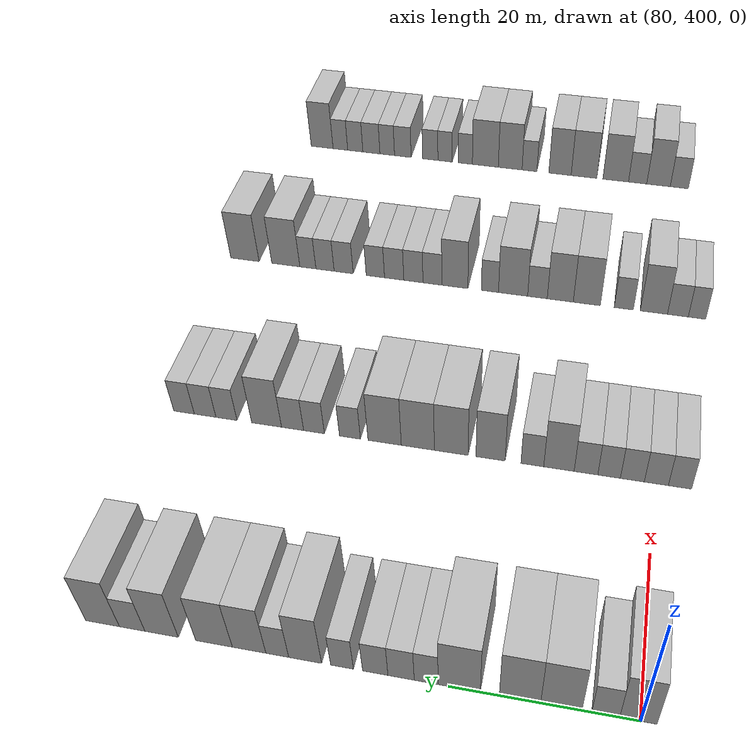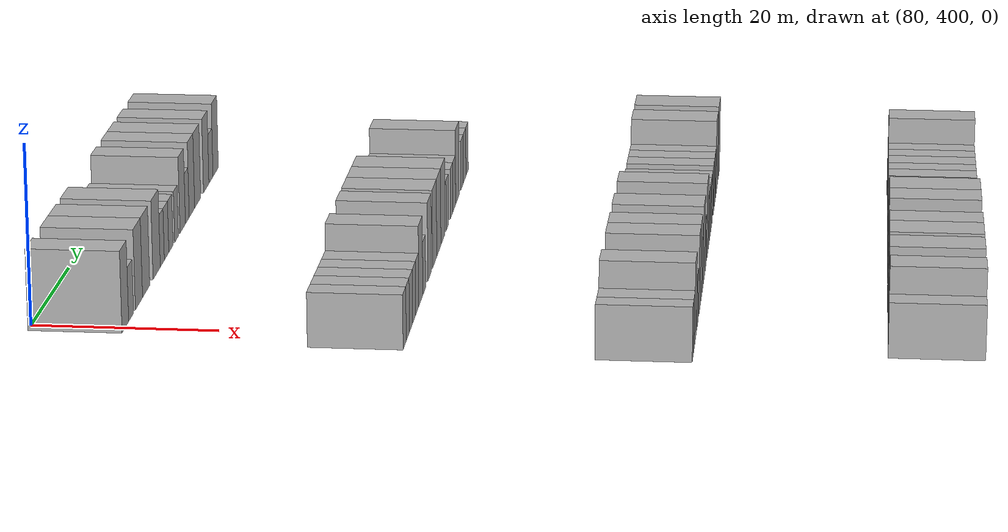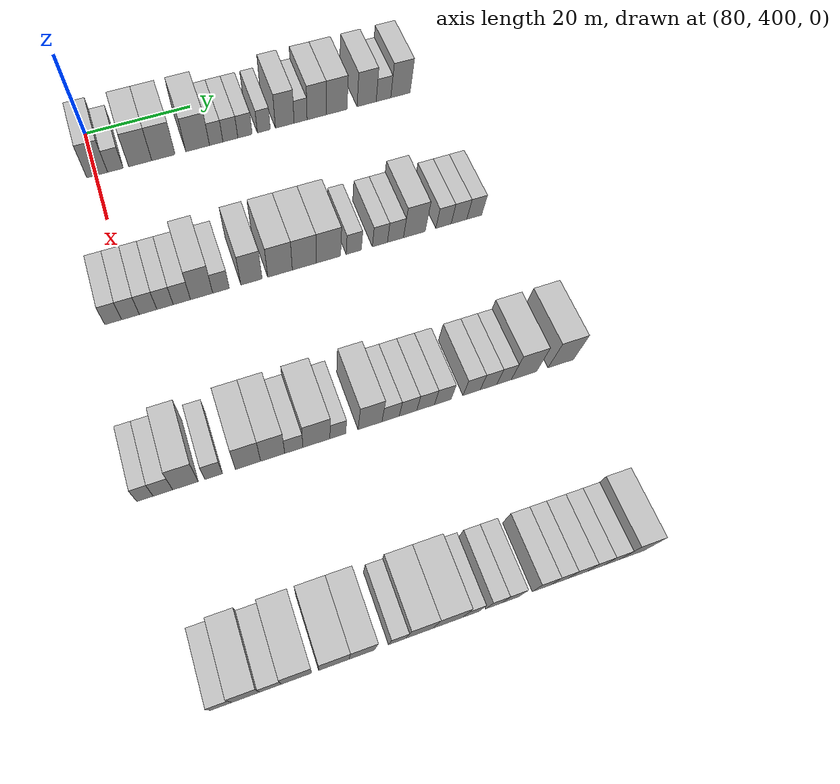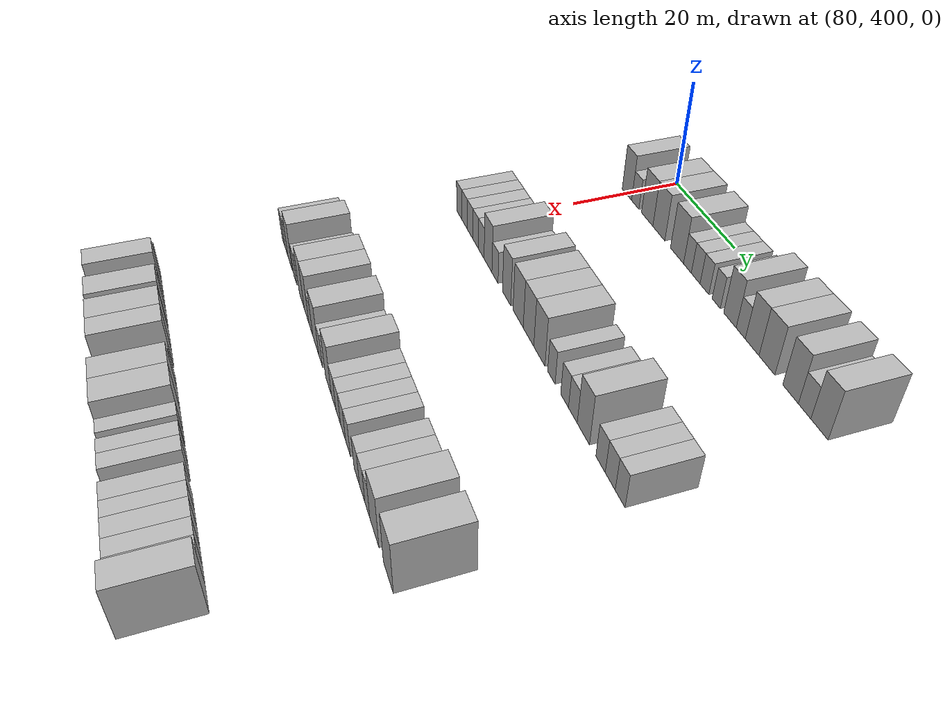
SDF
<sdf version="1.6">
 <world name="default">
  <model name="building_671">
   <static>1</static>
   <pose>85.0000 400.2577 0 0.000000 0.000000 0.000000</pose>
   <link name="link">
    <pose>0 0 4.50 0 0 0</pose>
    <collision name="collision"><geometry><box><size>10.0000 3.7973 9.0000</size></box></geometry></collision>
    <visual name="visual">
     <cast_shadows>0</cast_shadows>
     <geometry><box><size>10.0000 3.7973 9.0000</size></box></geometry>
     <material>
      <script>
       <uri>model://HANNAS_wall/materials/scripts</uri>
       <uri>model://HANNAS_wall/materials/textures</uri>
       <name>vrc/HANNAS_wall</name>
      </script>
     </material>
    </visual>
   </link>
  </model>
  <model name="building_672">
   <static>1</static>
   <pose>85.0000 403.5877 0 0.000000 0.000000 0.000000</pose>
   <link name="link">
    <pose>0 0 3.00 0 0 0</pose>
    <collision name="collision"><geometry><box><size>10.0000 2.8627 6.0000</size></box></geometry></collision>
    <visual name="visual">
     <cast_shadows>0</cast_shadows>
     <geometry><box><size>10.0000 2.8627 6.0000</size></box></geometry>
     <material>
      <script>
       <uri>model://HANNAS_wall/materials/scripts</uri>
       <uri>model://HANNAS_wall/materials/textures</uri>
       <name>vrc/HANNAS_wall</name>
      </script>
     </material>
    </visual>
   </link>
  </model>
  <model name="building_673">
   <static>1</static>
   <pose>85.0000 408.1589 0 0.000000 0.000000 0.000000</pose>
   <link name="link">
    <pose>0 0 4.50 0 0 0</pose>
    <collision name="collision"><geometry><box><size>10.0000 4.2796 9.0000</size></box></geometry></collision>
    <visual name="visual">
     <cast_shadows>0</cast_shadows>
     <geometry><box><size>10.0000 4.2796 9.0000</size></box></geometry>
     <material>
      <script>
       <uri>model://HANNAS_wall/materials/scripts</uri>
       <uri>model://HANNAS_wall/materials/textures</uri>
       <name>vrc/HANNAS_wall</name>
      </script>
     </material>
    </visual>
   </link>
  </model>
  <model name="building_674">
   <static>1</static>
   <pose>85.0000 412.4686 0 0.000000 0.000000 0.000000</pose>
   <link name="link">
    <pose>0 0 4.50 0 0 0</pose>
    <collision name="collision"><geometry><box><size>10.0000 4.3399 9.0000</size></box></geometry></collision>
    <visual name="visual">
     <cast_shadows>0</cast_shadows>
     <geometry><box><size>10.0000 4.3399 9.0000</size></box></geometry>
     <material>
      <script>
       <uri>model://HANNAS_wall/materials/scripts</uri>
       <uri>model://HANNAS_wall/materials/textures</uri>
       <name>vrc/HANNAS_wall</name>
      </script>
     </material>
    </visual>
   </link>
  </model>
  <model name="building_675">
   <static>1</static>
   <pose>85.0000 418.8766 0 0.000000 0.000000 0.000000</pose>
   <link name="link">
    <pose>0 0 4.50 0 0 0</pose>
    <collision name="collision"><geometry><box><size>10.0000 4.4762 9.0000</size></box></geometry></collision>
    <visual name="visual">
     <cast_shadows>0</cast_shadows>
     <geometry><box><size>10.0000 4.4762 9.0000</size></box></geometry>
     <material>
      <script>
       <uri>model://HANNAS_wall/materials/scripts</uri>
       <uri>model://HANNAS_wall/materials/textures</uri>
       <name>vrc/HANNAS_wall</name>
      </script>
     </material>
    </visual>
   </link>
  </model>
  <model name="building_676">
   <static>1</static>
   <pose>85.0000 422.4019 0 0.000000 0.000000 0.000000</pose>
   <link name="link">
    <pose>0 0 3.00 0 0 0</pose>
    <collision name="collision"><geometry><box><size>10.0000 2.5745 6.0000</size></box></geometry></collision>
    <visual name="visual">
     <cast_shadows>0</cast_shadows>
     <geometry><box><size>10.0000 2.5745 6.0000</size></box></geometry>
     <material>
      <script>
       <uri>model://HANNAS_wall/materials/scripts</uri>
       <uri>model://HANNAS_wall/materials/textures</uri>
       <name>vrc/HANNAS_wall</name>
      </script>
     </material>
    </visual>
   </link>
  </model>
  <model name="building_677">
   <static>1</static>
   <pose>85.0000 425.1099 0 0.000000 0.000000 0.000000</pose>
   <link name="link">
    <pose>0 0 3.00 0 0 0</pose>
    <collision name="collision"><geometry><box><size>10.0000 2.8415 6.0000</size></box></geometry></collision>
    <visual name="visual">
     <cast_shadows>0</cast_shadows>
     <geometry><box><size>10.0000 2.8415 6.0000</size></box></geometry>
     <material>
      <script>
       <uri>model://HANNAS_wall/materials/scripts</uri>
       <uri>model://HANNAS_wall/materials/textures</uri>
       <name>vrc/HANNAS_wall</name>
      </script>
     </material>
    </visual>
   </link>
  </model>
  <model name="building_678">
   <static>1</static>
   <pose>85.0000 427.9083 0 0.000000 0.000000 0.000000</pose>
   <link name="link">
    <pose>0 0 3.00 0 0 0</pose>
    <collision name="collision"><geometry><box><size>10.0000 2.7551 6.0000</size></box></geometry></collision>
    <visual name="visual">
     <cast_shadows>0</cast_shadows>
     <geometry><box><size>10.0000 2.7551 6.0000</size></box></geometry>
     <material>
      <script>
       <uri>model://HANNAS_wall/materials/scripts</uri>
       <uri>model://HANNAS_wall/materials/textures</uri>
       <name>vrc/HANNAS_wall</name>
      </script>
     </material>
    </visual>
   </link>
  </model>
  <model name="building_679">
   <static>1</static>
   <pose>85.0000 431.5337 0 0.000000 0.000000 0.000000</pose>
   <link name="link">
    <pose>0 0 3.00 0 0 0</pose>
    <collision name="collision"><geometry><box><size>10.0000 2.4958 6.0000</size></box></geometry></collision>
    <visual name="visual">
     <cast_shadows>0</cast_shadows>
     <geometry><box><size>10.0000 2.4958 6.0000</size></box></geometry>
     <material>
      <script>
       <uri>model://HANNAS_wall/materials/scripts</uri>
       <uri>model://HANNAS_wall/materials/textures</uri>
       <name>vrc/HANNAS_wall</name>
      </script>
     </material>
    </visual>
   </link>
  </model>
  <model name="building_680">
   <static>1</static>
   <pose>85.0000 435.6031 0 0.000000 0.000000 0.000000</pose>
   <link name="link">
    <pose>0 0 4.50 0 0 0</pose>
    <collision name="collision"><geometry><box><size>10.0000 3.6430 9.0000</size></box></geometry></collision>
    <visual name="visual">
     <cast_shadows>0</cast_shadows>
     <geometry><box><size>10.0000 3.6430 9.0000</size></box></geometry>
     <material>
      <script>
       <uri>model://HANNAS_wall/materials/scripts</uri>
       <uri>model://HANNAS_wall/materials/textures</uri>
       <name>vrc/HANNAS_wall</name>
      </script>
     </material>
    </visual>
   </link>
  </model>
  <model name="building_681">
   <static>1</static>
   <pose>85.0000 438.7001 0 0.000000 0.000000 0.000000</pose>
   <link name="link">
    <pose>0 0 3.00 0 0 0</pose>
    <collision name="collision"><geometry><box><size>10.0000 2.5510 6.0000</size></box></geometry></collision>
    <visual name="visual">
     <cast_shadows>0</cast_shadows>
     <geometry><box><size>10.0000 2.5510 6.0000</size></box></geometry>
     <material>
      <script>
       <uri>model://HANNAS_wall/materials/scripts</uri>
       <uri>model://HANNAS_wall/materials/textures</uri>
       <name>vrc/HANNAS_wall</name>
      </script>
     </material>
    </visual>
   </link>
  </model>
  <model name="building_682">
   <static>1</static>
   <pose>85.0000 441.8605 0 0.000000 0.000000 0.000000</pose>
   <link name="link">
    <pose>0 0 4.50 0 0 0</pose>
    <collision name="collision"><geometry><box><size>10.0000 3.7698 9.0000</size></box></geometry></collision>
    <visual name="visual">
     <cast_shadows>0</cast_shadows>
     <geometry><box><size>10.0000 3.7698 9.0000</size></box></geometry>
     <material>
      <script>
       <uri>model://HANNAS_wall/materials/scripts</uri>
       <uri>model://HANNAS_wall/materials/textures</uri>
       <name>vrc/HANNAS_wall</name>
      </script>
     </material>
    </visual>
   </link>
  </model>
  <model name="building_683">
   <static>1</static>
   <pose>85.0000 445.8245 0 0.000000 0.000000 0.000000</pose>
   <link name="link">
    <pose>0 0 4.50 0 0 0</pose>
    <collision name="collision"><geometry><box><size>10.0000 4.1581 9.0000</size></box></geometry></collision>
    <visual name="visual">
     <cast_shadows>0</cast_shadows>
     <geometry><box><size>10.0000 4.1581 9.0000</size></box></geometry>
     <material>
      <script>
       <uri>model://HANNAS_wall/materials/scripts</uri>
       <uri>model://HANNAS_wall/materials/textures</uri>
       <name>vrc/HANNAS_wall</name>
      </script>
     </material>
    </visual>
   </link>
  </model>
  <model name="building_684">
   <static>1</static>
   <pose>85.0000 451.8263 0 0.000000 0.000000 0.000000</pose>
   <link name="link">
    <pose>0 0 4.50 0 0 0</pose>
    <collision name="collision"><geometry><box><size>10.0000 3.8455 9.0000</size></box></geometry></collision>
    <visual name="visual">
     <cast_shadows>0</cast_shadows>
     <geometry><box><size>10.0000 3.8455 9.0000</size></box></geometry>
     <material>
      <script>
       <uri>model://HANNAS_wall/materials/scripts</uri>
       <uri>model://HANNAS_wall/materials/textures</uri>
       <name>vrc/HANNAS_wall</name>
      </script>
     </material>
    </visual>
   </link>
  </model>
  <model name="building_685">
   <static>1</static>
   <pose>85.0000 455.2310 0 0.000000 0.000000 0.000000</pose>
   <link name="link">
    <pose>0 0 3.00 0 0 0</pose>
    <collision name="collision"><geometry><box><size>10.0000 2.9639 6.0000</size></box></geometry></collision>
    <visual name="visual">
     <cast_shadows>0</cast_shadows>
     <geometry><box><size>10.0000 2.9639 6.0000</size></box></geometry>
     <material>
      <script>
       <uri>model://HANNAS_wall/materials/scripts</uri>
       <uri>model://HANNAS_wall/materials/textures</uri>
       <name>vrc/HANNAS_wall</name>
      </script>
     </material>
    </visual>
   </link>
  </model>
  <model name="building_686">
   <static>1</static>
   <pose>85.0000 458.6773 0 0.000000 0.000000 0.000000</pose>
   <link name="link">
    <pose>0 0 4.50 0 0 0</pose>
    <collision name="collision"><geometry><box><size>10.0000 3.9289 9.0000</size></box></geometry></collision>
    <visual name="visual">
     <cast_shadows>0</cast_shadows>
     <geometry><box><size>10.0000 3.9289 9.0000</size></box></geometry>
     <material>
      <script>
       <uri>model://HANNAS_wall/materials/scripts</uri>
       <uri>model://HANNAS_wall/materials/textures</uri>
       <name>vrc/HANNAS_wall</name>
      </script>
     </material>
    </visual>
   </link>
  </model>
  <model name="building_898">
   <static>1</static>
   <pose>115.0000 396.9052 0 0.000000 0.000000 0.000000</pose>
   <link name="link">
    <pose>0 0 3.00 0 0 0</pose>
    <collision name="collision"><geometry><box><size>10.0000 2.8118 6.0000</size></box></geometry></collision>
    <visual name="visual">
     <cast_shadows>0</cast_shadows>
     <geometry><box><size>10.0000 2.8118 6.0000</size></box></geometry>
     <material>
      <script>
       <uri>model://HANNAS_wall/materials/scripts</uri>
       <uri>model://HANNAS_wall/materials/textures</uri>
       <name>vrc/HANNAS_wall</name>
      </script>
     </material>
    </visual>
   </link>
  </model>
  <model name="building_899">
   <static>1</static>
   <pose>115.0000 399.7756 0 0.000000 0.000000 0.000000</pose>
   <link name="link">
    <pose>0 0 3.00 0 0 0</pose>
    <collision name="collision"><geometry><box><size>10.0000 2.9290 6.0000</size></box></geometry></collision>
    <visual name="visual">
     <cast_shadows>0</cast_shadows>
     <geometry><box><size>10.0000 2.9290 6.0000</size></box></geometry>
     <material>
      <script>
       <uri>model://HANNAS_wall/materials/scripts</uri>
       <uri>model://HANNAS_wall/materials/textures</uri>
       <name>vrc/HANNAS_wall</name>
      </script>
     </material>
    </visual>
   </link>
  </model>
  <model name="building_900">
   <static>1</static>
   <pose>115.0000 402.7057 0 0.000000 0.000000 0.000000</pose>
   <link name="link">
    <pose>0 0 3.00 0 0 0</pose>
    <collision name="collision"><geometry><box><size>10.0000 2.9313 6.0000</size></box></geometry></collision>
    <visual name="visual">
     <cast_shadows>0</cast_shadows>
     <geometry><box><size>10.0000 2.9313 6.0000</size></box></geometry>
     <material>
      <script>
       <uri>model://HANNAS_wall/materials/scripts</uri>
       <uri>model://HANNAS_wall/materials/textures</uri>
       <name>vrc/HANNAS_wall</name>
      </script>
     </material>
    </visual>
   </link>
  </model>
  <model name="building_901">
   <static>1</static>
   <pose>115.0000 405.5606 0 0.000000 0.000000 0.000000</pose>
   <link name="link">
    <pose>0 0 3.00 0 0 0</pose>
    <collision name="collision"><geometry><box><size>10.0000 2.7785 6.0000</size></box></geometry></collision>
    <visual name="visual">
     <cast_shadows>0</cast_shadows>
     <geometry><box><size>10.0000 2.7785 6.0000</size></box></geometry>
     <material>
      <script>
       <uri>model://HANNAS_wall/materials/scripts</uri>
       <uri>model://HANNAS_wall/materials/textures</uri>
       <name>vrc/HANNAS_wall</name>
      </script>
     </material>
    </visual>
   </link>
  </model>
  <model name="building_902">
   <static>1</static>
   <pose>115.0000 408.4156 0 0.000000 0.000000 0.000000</pose>
   <link name="link">
    <pose>0 0 3.00 0 0 0</pose>
    <collision name="collision"><geometry><box><size>10.0000 2.9315 6.0000</size></box></geometry></collision>
    <visual name="visual">
     <cast_shadows>0</cast_shadows>
     <geometry><box><size>10.0000 2.9315 6.0000</size></box></geometry>
     <material>
      <script>
       <uri>model://HANNAS_wall/materials/scripts</uri>
       <uri>model://HANNAS_wall/materials/textures</uri>
       <name>vrc/HANNAS_wall</name>
      </script>
     </material>
    </visual>
   </link>
  </model>
  <model name="building_903">
   <static>1</static>
   <pose>115.0000 411.7792 0 0.000000 0.000000 0.000000</pose>
   <link name="link">
    <pose>0 0 4.50 0 0 0</pose>
    <collision name="collision"><geometry><box><size>10.0000 3.7956 9.0000</size></box></geometry></collision>
    <visual name="visual">
     <cast_shadows>0</cast_shadows>
     <geometry><box><size>10.0000 3.7956 9.0000</size></box></geometry>
     <material>
      <script>
       <uri>model://HANNAS_wall/materials/scripts</uri>
       <uri>model://HANNAS_wall/materials/textures</uri>
       <name>vrc/HANNAS_wall</name>
      </script>
     </material>
    </visual>
   </link>
  </model>
  <model name="building_904">
   <static>1</static>
   <pose>115.0000 415.1065 0 0.000000 0.000000 0.000000</pose>
   <link name="link">
    <pose>0 0 3.00 0 0 0</pose>
    <collision name="collision"><geometry><box><size>10.0000 2.8590 6.0000</size></box></geometry></collision>
    <visual name="visual">
     <cast_shadows>0</cast_shadows>
     <geometry><box><size>10.0000 2.8590 6.0000</size></box></geometry>
     <material>
      <script>
       <uri>model://HANNAS_wall/materials/scripts</uri>
       <uri>model://HANNAS_wall/materials/textures</uri>
       <name>vrc/HANNAS_wall</name>
      </script>
     </material>
    </visual>
   </link>
  </model>
  <model name="building_905">
   <static>1</static>
   <pose>115.0000 420.3855 0 0.000000 0.000000 0.000000</pose>
   <link name="link">
    <pose>0 0 4.50 0 0 0</pose>
    <collision name="collision"><geometry><box><size>10.0000 3.6990 9.0000</size></box></geometry></collision>
    <visual name="visual">
     <cast_shadows>0</cast_shadows>
     <geometry><box><size>10.0000 3.6990 9.0000</size></box></geometry>
     <material>
      <script>
       <uri>model://HANNAS_wall/materials/scripts</uri>
       <uri>model://HANNAS_wall/materials/textures</uri>
       <name>vrc/HANNAS_wall</name>
      </script>
     </material>
    </visual>
   </link>
  </model>
  <model name="building_906">
   <static>1</static>
   <pose>115.0000 425.3974 0 0.000000 0.000000 0.000000</pose>
   <link name="link">
    <pose>0 0 4.50 0 0 0</pose>
    <collision name="collision"><geometry><box><size>10.0000 4.3249 9.0000</size></box></geometry></collision>
    <visual name="visual">
     <cast_shadows>0</cast_shadows>
     <geometry><box><size>10.0000 4.3249 9.0000</size></box></geometry>
     <material>
      <script>
       <uri>model://HANNAS_wall/materials/scripts</uri>
       <uri>model://HANNAS_wall/materials/textures</uri>
       <name>vrc/HANNAS_wall</name>
      </script>
     </material>
    </visual>
   </link>
  </model>
  <model name="building_907">
   <static>1</static>
   <pose>115.0000 429.7009 0 0.000000 0.000000 0.000000</pose>
   <link name="link">
    <pose>0 0 4.50 0 0 0</pose>
    <collision name="collision"><geometry><box><size>10.0000 4.2821 9.0000</size></box></geometry></collision>
    <visual name="visual">
     <cast_shadows>0</cast_shadows>
     <geometry><box><size>10.0000 4.2821 9.0000</size></box></geometry>
     <material>
      <script>
       <uri>model://HANNAS_wall/materials/scripts</uri>
       <uri>model://HANNAS_wall/materials/textures</uri>
       <name>vrc/HANNAS_wall</name>
      </script>
     </material>
    </visual>
   </link>
  </model>
  <model name="building_908">
   <static>1</static>
   <pose>115.0000 434.0150 0 0.000000 0.000000 0.000000</pose>
   <link name="link">
    <pose>0 0 4.50 0 0 0</pose>
    <collision name="collision"><geometry><box><size>10.0000 4.3460 9.0000</size></box></geometry></collision>
    <visual name="visual">
     <cast_shadows>0</cast_shadows>
     <geometry><box><size>10.0000 4.3460 9.0000</size></box></geometry>
     <material>
      <script>
       <uri>model://HANNAS_wall/materials/scripts</uri>
       <uri>model://HANNAS_wall/materials/textures</uri>
       <name>vrc/HANNAS_wall</name>
      </script>
     </material>
    </visual>
   </link>
  </model>
  <model name="building_909">
   <static>1</static>
   <pose>115.0000 438.5629 0 0.000000 0.000000 0.000000</pose>
   <link name="link">
    <pose>0 0 3.00 0 0 0</pose>
    <collision name="collision"><geometry><box><size>10.0000 2.7499 6.0000</size></box></geometry></collision>
    <visual name="visual">
     <cast_shadows>0</cast_shadows>
     <geometry><box><size>10.0000 2.7499 6.0000</size></box></geometry>
     <material>
      <script>
       <uri>model://HANNAS_wall/materials/scripts</uri>
       <uri>model://HANNAS_wall/materials/textures</uri>
       <name>vrc/HANNAS_wall</name>
      </script>
     </material>
    </visual>
   </link>
  </model>
  <model name="building_910">
   <static>1</static>
   <pose>115.0000 443.3223 0 0.000000 0.000000 0.000000</pose>
   <link name="link">
    <pose>0 0 3.00 0 0 0</pose>
    <collision name="collision"><geometry><box><size>10.0000 2.7689 6.0000</size></box></geometry></collision>
    <visual name="visual">
     <cast_shadows>0</cast_shadows>
     <geometry><box><size>10.0000 2.7689 6.0000</size></box></geometry>
     <material>
      <script>
       <uri>model://HANNAS_wall/materials/scripts</uri>
       <uri>model://HANNAS_wall/materials/textures</uri>
       <name>vrc/HANNAS_wall</name>
      </script>
     </material>
    </visual>
   </link>
  </model>
  <model name="building_911">
   <static>1</static>
   <pose>115.0000 446.1826 0 0.000000 0.000000 0.000000</pose>
   <link name="link">
    <pose>0 0 3.00 0 0 0</pose>
    <collision name="collision"><geometry><box><size>10.0000 2.9518 6.0000</size></box></geometry></collision>
    <visual name="visual">
     <cast_shadows>0</cast_shadows>
     <geometry><box><size>10.0000 2.9518 6.0000</size></box></geometry>
     <material>
      <script>
       <uri>model://HANNAS_wall/materials/scripts</uri>
       <uri>model://HANNAS_wall/materials/textures</uri>
       <name>vrc/HANNAS_wall</name>
      </script>
     </material>
    </visual>
   </link>
  </model>
  <model name="building_912">
   <static>1</static>
   <pose>115.0000 449.6669 0 0.000000 0.000000 0.000000</pose>
   <link name="link">
    <pose>0 0 4.50 0 0 0</pose>
    <collision name="collision"><geometry><box><size>10.0000 4.0166 9.0000</size></box></geometry></collision>
    <visual name="visual">
     <cast_shadows>0</cast_shadows>
     <geometry><box><size>10.0000 4.0166 9.0000</size></box></geometry>
     <material>
      <script>
       <uri>model://HANNAS_wall/materials/scripts</uri>
       <uri>model://HANNAS_wall/materials/textures</uri>
       <name>vrc/HANNAS_wall</name>
      </script>
     </material>
    </visual>
   </link>
  </model>
  <model name="building_913">
   <static>1</static>
   <pose>115.0000 455.1078 0 0.000000 0.000000 0.000000</pose>
   <link name="link">
    <pose>0 0 3.00 0 0 0</pose>
    <collision name="collision"><geometry><box><size>10.0000 2.8652 6.0000</size></box></geometry></collision>
    <visual name="visual">
     <cast_shadows>0</cast_shadows>
     <geometry><box><size>10.0000 2.8652 6.0000</size></box></geometry>
     <material>
      <script>
       <uri>model://HANNAS_wall/materials/scripts</uri>
       <uri>model://HANNAS_wall/materials/textures</uri>
       <name>vrc/HANNAS_wall</name>
      </script>
     </material>
    </visual>
   </link>
  </model>
  <model name="building_914">
   <static>1</static>
   <pose>115.0000 458.0218 0 0.000000 0.000000 0.000000</pose>
   <link name="link">
    <pose>0 0 3.00 0 0 0</pose>
    <collision name="collision"><geometry><box><size>10.0000 2.9629 6.0000</size></box></geometry></collision>
    <visual name="visual">
     <cast_shadows>0</cast_shadows>
     <geometry><box><size>10.0000 2.9629 6.0000</size></box></geometry>
     <material>
      <script>
       <uri>model://HANNAS_wall/materials/scripts</uri>
       <uri>model://HANNAS_wall/materials/textures</uri>
       <name>vrc/HANNAS_wall</name>
      </script>
     </material>
    </visual>
   </link>
  </model>
  <model name="building_915">
   <static>1</static>
   <pose>115.0000 460.9123 0 0.000000 0.000000 0.000000</pose>
   <link name="link">
    <pose>0 0 3.00 0 0 0</pose>
    <collision name="collision"><geometry><box><size>10.0000 2.8180 6.0000</size></box></geometry></collision>
    <visual name="visual">
     <cast_shadows>0</cast_shadows>
     <geometry><box><size>10.0000 2.8180 6.0000</size></box></geometry>
     <material>
      <script>
       <uri>model://HANNAS_wall/materials/scripts</uri>
       <uri>model://HANNAS_wall/materials/textures</uri>
       <name>vrc/HANNAS_wall</name>
      </script>
     </material>
    </visual>
   </link>
  </model>
  <model name="building_1117">
   <static>1</static>
   <pose>145.0000 395.3535 0 0.000000 0.000000 0.000000</pose>
   <link name="link">
    <pose>0 0 3.00 0 0 0</pose>
    <collision name="collision"><geometry><box><size>10.0000 2.4662 6.0000</size></box></geometry></collision>
    <visual name="visual">
     <cast_shadows>0</cast_shadows>
     <geometry><box><size>10.0000 2.4662 6.0000</size></box></geometry>
     <material>
      <script>
       <uri>model://HANNAS_wall/materials/scripts</uri>
       <uri>model://HANNAS_wall/materials/textures</uri>
       <name>vrc/HANNAS_wall</name>
      </script>
     </material>
    </visual>
   </link>
  </model>
  <model name="building_1118">
   <static>1</static>
   <pose>145.0000 398.0584 0 0.000000 0.000000 0.000000</pose>
   <link name="link">
    <pose>0 0 3.00 0 0 0</pose>
    <collision name="collision"><geometry><box><size>10.0000 2.9435 6.0000</size></box></geometry></collision>
    <visual name="visual">
     <cast_shadows>0</cast_shadows>
     <geometry><box><size>10.0000 2.9435 6.0000</size></box></geometry>
     <material>
      <script>
       <uri>model://HANNAS_wall/materials/scripts</uri>
       <uri>model://HANNAS_wall/materials/textures</uri>
       <name>vrc/HANNAS_wall</name>
      </script>
     </material>
    </visual>
   </link>
  </model>
  <model name="building_1119">
   <static>1</static>
   <pose>145.0000 401.4656 0 0.000000 0.000000 0.000000</pose>
   <link name="link">
    <pose>0 0 4.50 0 0 0</pose>
    <collision name="collision"><geometry><box><size>10.0000 3.8709 9.0000</size></box></geometry></collision>
    <visual name="visual">
     <cast_shadows>0</cast_shadows>
     <geometry><box><size>10.0000 3.8709 9.0000</size></box></geometry>
     <material>
      <script>
       <uri>model://HANNAS_wall/materials/scripts</uri>
       <uri>model://HANNAS_wall/materials/textures</uri>
       <name>vrc/HANNAS_wall</name>
      </script>
     </material>
    </visual>
   </link>
  </model>
  <model name="building_1120">
   <static>1</static>
   <pose>145.0000 405.7679 0 0.000000 0.000000 0.000000</pose>
   <link name="link">
    <pose>0 0 3.00 0 0 0</pose>
    <collision name="collision"><geometry><box><size>10.0000 2.7336 6.0000</size></box></geometry></collision>
    <visual name="visual">
     <cast_shadows>0</cast_shadows>
     <geometry><box><size>10.0000 2.7336 6.0000</size></box></geometry>
     <material>
      <script>
       <uri>model://HANNAS_wall/materials/scripts</uri>
       <uri>model://HANNAS_wall/materials/textures</uri>
       <name>vrc/HANNAS_wall</name>
      </script>
     </material>
    </visual>
   </link>
  </model>
  <model name="building_1121">
   <static>1</static>
   <pose>145.0000 411.0956 0 0.000000 0.000000 0.000000</pose>
   <link name="link">
    <pose>0 0 4.50 0 0 0</pose>
    <collision name="collision"><geometry><box><size>10.0000 3.9218 9.0000</size></box></geometry></collision>
    <visual name="visual">
     <cast_shadows>0</cast_shadows>
     <geometry><box><size>10.0000 3.9218 9.0000</size></box></geometry>
     <material>
      <script>
       <uri>model://HANNAS_wall/materials/scripts</uri>
       <uri>model://HANNAS_wall/materials/textures</uri>
       <name>vrc/HANNAS_wall</name>
      </script>
     </material>
    </visual>
   </link>
  </model>
  <model name="building_1122">
   <static>1</static>
   <pose>145.0000 414.9507 0 0.000000 0.000000 0.000000</pose>
   <link name="link">
    <pose>0 0 4.50 0 0 0</pose>
    <collision name="collision"><geometry><box><size>10.0000 3.7885 9.0000</size></box></geometry></collision>
    <visual name="visual">
     <cast_shadows>0</cast_shadows>
     <geometry><box><size>10.0000 3.7885 9.0000</size></box></geometry>
     <material>
      <script>
       <uri>model://HANNAS_wall/materials/scripts</uri>
       <uri>model://HANNAS_wall/materials/textures</uri>
       <name>vrc/HANNAS_wall</name>
      </script>
     </material>
    </visual>
   </link>
  </model>
  <model name="building_1123">
   <static>1</static>
   <pose>145.0000 418.2826 0 0.000000 0.000000 0.000000</pose>
   <link name="link">
    <pose>0 0 3.00 0 0 0</pose>
    <collision name="collision"><geometry><box><size>10.0000 2.8753 6.0000</size></box></geometry></collision>
    <visual name="visual">
     <cast_shadows>0</cast_shadows>
     <geometry><box><size>10.0000 2.8753 6.0000</size></box></geometry>
     <material>
      <script>
       <uri>model://HANNAS_wall/materials/scripts</uri>
       <uri>model://HANNAS_wall/materials/textures</uri>
       <name>vrc/HANNAS_wall</name>
      </script>
     </material>
    </visual>
   </link>
  </model>
  <model name="building_1124">
   <static>1</static>
   <pose>145.0000 421.8732 0 0.000000 0.000000 0.000000</pose>
   <link name="link">
    <pose>0 0 4.50 0 0 0</pose>
    <collision name="collision"><geometry><box><size>10.0000 4.3061 9.0000</size></box></geometry></collision>
    <visual name="visual">
     <cast_shadows>0</cast_shadows>
     <geometry><box><size>10.0000 4.3061 9.0000</size></box></geometry>
     <material>
      <script>
       <uri>model://HANNAS_wall/materials/scripts</uri>
       <uri>model://HANNAS_wall/materials/textures</uri>
       <name>vrc/HANNAS_wall</name>
      </script>
     </material>
    </visual>
   </link>
  </model>
  <model name="building_1125">
   <static>1</static>
   <pose>145.0000 425.3003 0 0.000000 0.000000 0.000000</pose>
   <link name="link">
    <pose>0 0 3.00 0 0 0</pose>
    <collision name="collision"><geometry><box><size>10.0000 2.5481 6.0000</size></box></geometry></collision>
    <visual name="visual">
     <cast_shadows>0</cast_shadows>
     <geometry><box><size>10.0000 2.5481 6.0000</size></box></geometry>
     <material>
      <script>
       <uri>model://HANNAS_wall/materials/scripts</uri>
       <uri>model://HANNAS_wall/materials/textures</uri>
       <name>vrc/HANNAS_wall</name>
      </script>
     </material>
    </visual>
   </link>
  </model>
  <model name="building_1126">
   <static>1</static>
   <pose>145.0000 430.5188 0 0.000000 0.000000 0.000000</pose>
   <link name="link">
    <pose>0 0 4.50 0 0 0</pose>
    <collision name="collision"><geometry><box><size>10.0000 3.8889 9.0000</size></box></geometry></collision>
    <visual name="visual">
     <cast_shadows>0</cast_shadows>
     <geometry><box><size>10.0000 3.8889 9.0000</size></box></geometry>
     <material>
      <script>
       <uri>model://HANNAS_wall/materials/scripts</uri>
       <uri>model://HANNAS_wall/materials/textures</uri>
       <name>vrc/HANNAS_wall</name>
      </script>
     </material>
    </visual>
   </link>
  </model>
  <model name="building_1127">
   <static>1</static>
   <pose>145.0000 433.8888 0 0.000000 0.000000 0.000000</pose>
   <link name="link">
    <pose>0 0 3.00 0 0 0</pose>
    <collision name="collision"><geometry><box><size>10.0000 2.8511 6.0000</size></box></geometry></collision>
    <visual name="visual">
     <cast_shadows>0</cast_shadows>
     <geometry><box><size>10.0000 2.8511 6.0000</size></box></geometry>
     <material>
      <script>
       <uri>model://HANNAS_wall/materials/scripts</uri>
       <uri>model://HANNAS_wall/materials/textures</uri>
       <name>vrc/HANNAS_wall</name>
      </script>
     </material>
    </visual>
   </link>
  </model>
  <model name="building_1128">
   <static>1</static>
   <pose>145.0000 436.7670 0 0.000000 0.000000 0.000000</pose>
   <link name="link">
    <pose>0 0 3.00 0 0 0</pose>
    <collision name="collision"><geometry><box><size>10.0000 2.9052 6.0000</size></box></geometry></collision>
    <visual name="visual">
     <cast_shadows>0</cast_shadows>
     <geometry><box><size>10.0000 2.9052 6.0000</size></box></geometry>
     <material>
      <script>
       <uri>model://HANNAS_wall/materials/scripts</uri>
       <uri>model://HANNAS_wall/materials/textures</uri>
       <name>vrc/HANNAS_wall</name>
      </script>
     </material>
    </visual>
   </link>
  </model>
  <model name="building_1129">
   <static>1</static>
   <pose>145.0000 439.6861 0 0.000000 0.000000 0.000000</pose>
   <link name="link">
    <pose>0 0 3.00 0 0 0</pose>
    <collision name="collision"><geometry><box><size>10.0000 2.9329 6.0000</size></box></geometry></collision>
    <visual name="visual">
     <cast_shadows>0</cast_shadows>
     <geometry><box><size>10.0000 2.9329 6.0000</size></box></geometry>
     <material>
      <script>
       <uri>model://HANNAS_wall/materials/scripts</uri>
       <uri>model://HANNAS_wall/materials/textures</uri>
       <name>vrc/HANNAS_wall</name>
      </script>
     </material>
    </visual>
   </link>
  </model>
  <model name="building_1130">
   <static>1</static>
   <pose>145.0000 442.5549 0 0.000000 0.000000 0.000000</pose>
   <link name="link">
    <pose>0 0 3.00 0 0 0</pose>
    <collision name="collision"><geometry><box><size>10.0000 2.8047 6.0000</size></box></geometry></collision>
    <visual name="visual">
     <cast_shadows>0</cast_shadows>
     <geometry><box><size>10.0000 2.8047 6.0000</size></box></geometry>
     <material>
      <script>
       <uri>model://HANNAS_wall/materials/scripts</uri>
       <uri>model://HANNAS_wall/materials/textures</uri>
       <name>vrc/HANNAS_wall</name>
      </script>
     </material>
    </visual>
   </link>
  </model>
  <model name="building_1131">
   <static>1</static>
   <pose>145.0000 447.4257 0 0.000000 0.000000 0.000000</pose>
   <link name="link">
    <pose>0 0 3.00 0 0 0</pose>
    <collision name="collision"><geometry><box><size>10.0000 2.9369 6.0000</size></box></geometry></collision>
    <visual name="visual">
     <cast_shadows>0</cast_shadows>
     <geometry><box><size>10.0000 2.9369 6.0000</size></box></geometry>
     <material>
      <script>
       <uri>model://HANNAS_wall/materials/scripts</uri>
       <uri>model://HANNAS_wall/materials/textures</uri>
       <name>vrc/HANNAS_wall</name>
      </script>
     </material>
    </visual>
   </link>
  </model>
  <model name="building_1132">
   <static>1</static>
   <pose>145.0000 450.3051 0 0.000000 0.000000 0.000000</pose>
   <link name="link">
    <pose>0 0 3.00 0 0 0</pose>
    <collision name="collision"><geometry><box><size>10.0000 2.8219 6.0000</size></box></geometry></collision>
    <visual name="visual">
     <cast_shadows>0</cast_shadows>
     <geometry><box><size>10.0000 2.8219 6.0000</size></box></geometry>
     <material>
      <script>
       <uri>model://HANNAS_wall/materials/scripts</uri>
       <uri>model://HANNAS_wall/materials/textures</uri>
       <name>vrc/HANNAS_wall</name>
      </script>
     </material>
    </visual>
   </link>
  </model>
  <model name="building_1133">
   <static>1</static>
   <pose>145.0000 452.9670 0 0.000000 0.000000 0.000000</pose>
   <link name="link">
    <pose>0 0 3.00 0 0 0</pose>
    <collision name="collision"><geometry><box><size>10.0000 2.5018 6.0000</size></box></geometry></collision>
    <visual name="visual">
     <cast_shadows>0</cast_shadows>
     <geometry><box><size>10.0000 2.5018 6.0000</size></box></geometry>
     <material>
      <script>
       <uri>model://HANNAS_wall/materials/scripts</uri>
       <uri>model://HANNAS_wall/materials/textures</uri>
       <name>vrc/HANNAS_wall</name>
      </script>
     </material>
    </visual>
   </link>
  </model>
  <model name="building_1134">
   <static>1</static>
   <pose>145.0000 456.4193 0 0.000000 0.000000 0.000000</pose>
   <link name="link">
    <pose>0 0 4.50 0 0 0</pose>
    <collision name="collision"><geometry><box><size>10.0000 4.4028 9.0000</size></box></geometry></collision>
    <visual name="visual">
     <cast_shadows>0</cast_shadows>
     <geometry><box><size>10.0000 4.4028 9.0000</size></box></geometry>
     <material>
      <script>
       <uri>model://HANNAS_wall/materials/scripts</uri>
       <uri>model://HANNAS_wall/materials/textures</uri>
       <name>vrc/HANNAS_wall</name>
      </script>
     </material>
    </visual>
   </link>
  </model>
  <model name="building_1135">
   <static>1</static>
   <pose>145.0000 462.8538 0 0.000000 0.000000 0.000000</pose>
   <link name="link">
    <pose>0 0 4.50 0 0 0</pose>
    <collision name="collision"><geometry><box><size>10.0000 4.4663 9.0000</size></box></geometry></collision>
    <visual name="visual">
     <cast_shadows>0</cast_shadows>
     <geometry><box><size>10.0000 4.4663 9.0000</size></box></geometry>
     <material>
      <script>
       <uri>model://HANNAS_wall/materials/scripts</uri>
       <uri>model://HANNAS_wall/materials/textures</uri>
       <name>vrc/HANNAS_wall</name>
      </script>
     </material>
    </visual>
   </link>
  </model>
  <model name="building_1346">
   <static>1</static>
   <pose>175.0000 398.7291 0 0.000000 0.000000 0.000000</pose>
   <link name="link">
    <pose>0 0 3.00 0 0 0</pose>
    <collision name="collision"><geometry><box><size>10.0000 2.9280 6.0000</size></box></geometry></collision>
    <visual name="visual">
     <cast_shadows>0</cast_shadows>
     <geometry><box><size>10.0000 2.9280 6.0000</size></box></geometry>
     <material>
      <script>
       <uri>model://HANNAS_wall/materials/scripts</uri>
       <uri>model://HANNAS_wall/materials/textures</uri>
       <name>vrc/HANNAS_wall</name>
      </script>
     </material>
    </visual>
   </link>
  </model>
  <model name="building_1347">
   <static>1</static>
   <pose>175.0000 402.1030 0 0.000000 0.000000 0.000000</pose>
   <link name="link">
    <pose>0 0 4.50 0 0 0</pose>
    <collision name="collision"><geometry><box><size>10.0000 3.8198 9.0000</size></box></geometry></collision>
    <visual name="visual">
     <cast_shadows>0</cast_shadows>
     <geometry><box><size>10.0000 3.8198 9.0000</size></box></geometry>
     <material>
      <script>
       <uri>model://HANNAS_wall/materials/scripts</uri>
       <uri>model://HANNAS_wall/materials/textures</uri>
       <name>vrc/HANNAS_wall</name>
      </script>
     </material>
    </visual>
   </link>
  </model>
  <model name="building_1348">
   <static>1</static>
   <pose>175.0000 405.5084 0 0.000000 0.000000 0.000000</pose>
   <link name="link">
    <pose>0 0 3.00 0 0 0</pose>
    <collision name="collision"><geometry><box><size>10.0000 2.9910 6.0000</size></box></geometry></collision>
    <visual name="visual">
     <cast_shadows>0</cast_shadows>
     <geometry><box><size>10.0000 2.9910 6.0000</size></box></geometry>
     <material>
      <script>
       <uri>model://HANNAS_wall/materials/scripts</uri>
       <uri>model://HANNAS_wall/materials/textures</uri>
       <name>vrc/HANNAS_wall</name>
      </script>
     </material>
    </visual>
   </link>
  </model>
  <model name="building_1349">
   <static>1</static>
   <pose>175.0000 409.1102 0 0.000000 0.000000 0.000000</pose>
   <link name="link">
    <pose>0 0 4.50 0 0 0</pose>
    <collision name="collision"><geometry><box><size>10.0000 4.2126 9.0000</size></box></geometry></collision>
    <visual name="visual">
     <cast_shadows>0</cast_shadows>
     <geometry><box><size>10.0000 4.2126 9.0000</size></box></geometry>
     <material>
      <script>
       <uri>model://HANNAS_wall/materials/scripts</uri>
       <uri>model://HANNAS_wall/materials/textures</uri>
       <name>vrc/HANNAS_wall</name>
      </script>
     </material>
    </visual>
   </link>
  </model>
  <model name="building_1350">
   <static>1</static>
   <pose>175.0000 414.3465 0 0.000000 0.000000 0.000000</pose>
   <link name="link">
    <pose>0 0 4.50 0 0 0</pose>
    <collision name="collision"><geometry><box><size>10.0000 4.2601 9.0000</size></box></geometry></collision>
    <visual name="visual">
     <cast_shadows>0</cast_shadows>
     <geometry><box><size>10.0000 4.2601 9.0000</size></box></geometry>
     <material>
      <script>
       <uri>model://HANNAS_wall/materials/scripts</uri>
       <uri>model://HANNAS_wall/materials/textures</uri>
       <name>vrc/HANNAS_wall</name>
      </script>
     </material>
    </visual>
   </link>
  </model>
  <model name="building_1351">
   <static>1</static>
   <pose>175.0000 418.3367 0 0.000000 0.000000 0.000000</pose>
   <link name="link">
    <pose>0 0 4.50 0 0 0</pose>
    <collision name="collision"><geometry><box><size>10.0000 3.7203 9.0000</size></box></geometry></collision>
    <visual name="visual">
     <cast_shadows>0</cast_shadows>
     <geometry><box><size>10.0000 3.7203 9.0000</size></box></geometry>
     <material>
      <script>
       <uri>model://HANNAS_wall/materials/scripts</uri>
       <uri>model://HANNAS_wall/materials/textures</uri>
       <name>vrc/HANNAS_wall</name>
      </script>
     </material>
    </visual>
   </link>
  </model>
  <model name="building_1352">
   <static>1</static>
   <pose>175.0000 423.4448 0 0.000000 0.000000 0.000000</pose>
   <link name="link">
    <pose>0 0 3.00 0 0 0</pose>
    <collision name="collision"><geometry><box><size>10.0000 2.4960 6.0000</size></box></geometry></collision>
    <visual name="visual">
     <cast_shadows>0</cast_shadows>
     <geometry><box><size>10.0000 2.4960 6.0000</size></box></geometry>
     <material>
      <script>
       <uri>model://HANNAS_wall/materials/scripts</uri>
       <uri>model://HANNAS_wall/materials/textures</uri>
       <name>vrc/HANNAS_wall</name>
      </script>
     </material>
    </visual>
   </link>
  </model>
  <model name="building_1353">
   <static>1</static>
   <pose>175.0000 426.7019 0 0.000000 0.000000 0.000000</pose>
   <link name="link">
    <pose>0 0 4.50 0 0 0</pose>
    <collision name="collision"><geometry><box><size>10.0000 4.0181 9.0000</size></box></geometry></collision>
    <visual name="visual">
     <cast_shadows>0</cast_shadows>
     <geometry><box><size>10.0000 4.0181 9.0000</size></box></geometry>
     <material>
      <script>
       <uri>model://HANNAS_wall/materials/scripts</uri>
       <uri>model://HANNAS_wall/materials/textures</uri>
       <name>vrc/HANNAS_wall</name>
      </script>
     </material>
    </visual>
   </link>
  </model>
  <model name="building_1354">
   <static>1</static>
   <pose>175.0000 430.9155 0 0.000000 0.000000 0.000000</pose>
   <link name="link">
    <pose>0 0 4.50 0 0 0</pose>
    <collision name="collision"><geometry><box><size>10.0000 4.4091 9.0000</size></box></geometry></collision>
    <visual name="visual">
     <cast_shadows>0</cast_shadows>
     <geometry><box><size>10.0000 4.4091 9.0000</size></box></geometry>
     <material>
      <script>
       <uri>model://HANNAS_wall/materials/scripts</uri>
       <uri>model://HANNAS_wall/materials/textures</uri>
       <name>vrc/HANNAS_wall</name>
      </script>
     </material>
    </visual>
   </link>
  </model>
  <model name="building_1355">
   <static>1</static>
   <pose>175.0000 434.3409 0 0.000000 0.000000 0.000000</pose>
   <link name="link">
    <pose>0 0 3.00 0 0 0</pose>
    <collision name="collision"><geometry><box><size>10.0000 2.4416 6.0000</size></box></geometry></collision>
    <visual name="visual">
     <cast_shadows>0</cast_shadows>
     <geometry><box><size>10.0000 2.4416 6.0000</size></box></geometry>
     <material>
      <script>
       <uri>model://HANNAS_wall/materials/scripts</uri>
       <uri>model://HANNAS_wall/materials/textures</uri>
       <name>vrc/HANNAS_wall</name>
      </script>
     </material>
    </visual>
   </link>
  </model>
  <model name="building_1356">
   <static>1</static>
   <pose>175.0000 437.7931 0 0.000000 0.000000 0.000000</pose>
   <link name="link">
    <pose>0 0 3.00 0 0 0</pose>
    <collision name="collision"><geometry><box><size>10.0000 2.4629 6.0000</size></box></geometry></collision>
    <visual name="visual">
     <cast_shadows>0</cast_shadows>
     <geometry><box><size>10.0000 2.4629 6.0000</size></box></geometry>
     <material>
      <script>
       <uri>model://HANNAS_wall/materials/scripts</uri>
       <uri>model://HANNAS_wall/materials/textures</uri>
       <name>vrc/HANNAS_wall</name>
      </script>
     </material>
    </visual>
   </link>
  </model>
  <model name="building_1357">
   <static>1</static>
   <pose>175.0000 440.3382 0 0.000000 0.000000 0.000000</pose>
   <link name="link">
    <pose>0 0 3.00 0 0 0</pose>
    <collision name="collision"><geometry><box><size>10.0000 2.6273 6.0000</size></box></geometry></collision>
    <visual name="visual">
     <cast_shadows>0</cast_shadows>
     <geometry><box><size>10.0000 2.6273 6.0000</size></box></geometry>
     <material>
      <script>
       <uri>model://HANNAS_wall/materials/scripts</uri>
       <uri>model://HANNAS_wall/materials/textures</uri>
       <name>vrc/HANNAS_wall</name>
      </script>
     </material>
    </visual>
   </link>
  </model>
  <model name="building_1358">
   <static>1</static>
   <pose>175.0000 445.0934 0 0.000000 0.000000 0.000000</pose>
   <link name="link">
    <pose>0 0 3.00 0 0 0</pose>
    <collision name="collision"><geometry><box><size>10.0000 2.8833 6.0000</size></box></geometry></collision>
    <visual name="visual">
     <cast_shadows>0</cast_shadows>
     <geometry><box><size>10.0000 2.8833 6.0000</size></box></geometry>
     <material>
      <script>
       <uri>model://HANNAS_wall/materials/scripts</uri>
       <uri>model://HANNAS_wall/materials/textures</uri>
       <name>vrc/HANNAS_wall</name>
      </script>
     </material>
    </visual>
   </link>
  </model>
  <model name="building_1359">
   <static>1</static>
   <pose>175.0000 447.8115 0 0.000000 0.000000 0.000000</pose>
   <link name="link">
    <pose>0 0 3.00 0 0 0</pose>
    <collision name="collision"><geometry><box><size>10.0000 2.5529 6.0000</size></box></geometry></collision>
    <visual name="visual">
     <cast_shadows>0</cast_shadows>
     <geometry><box><size>10.0000 2.5529 6.0000</size></box></geometry>
     <material>
      <script>
       <uri>model://HANNAS_wall/materials/scripts</uri>
       <uri>model://HANNAS_wall/materials/textures</uri>
       <name>vrc/HANNAS_wall</name>
      </script>
     </material>
    </visual>
   </link>
  </model>
  <model name="building_1360">
   <static>1</static>
   <pose>175.0000 450.5825 0 0.000000 0.000000 0.000000</pose>
   <link name="link">
    <pose>0 0 3.00 0 0 0</pose>
    <collision name="collision"><geometry><box><size>10.0000 2.9891 6.0000</size></box></geometry></collision>
    <visual name="visual">
     <cast_shadows>0</cast_shadows>
     <geometry><box><size>10.0000 2.9891 6.0000</size></box></geometry>
     <material>
      <script>
       <uri>model://HANNAS_wall/materials/scripts</uri>
       <uri>model://HANNAS_wall/materials/textures</uri>
       <name>vrc/HANNAS_wall</name>
      </script>
     </material>
    </visual>
   </link>
  </model>
  <model name="building_1361">
   <static>1</static>
   <pose>175.0000 453.4092 0 0.000000 0.000000 0.000000</pose>
   <link name="link">
    <pose>0 0 3.00 0 0 0</pose>
    <collision name="collision"><geometry><box><size>10.0000 2.6643 6.0000</size></box></geometry></collision>
    <visual name="visual">
     <cast_shadows>0</cast_shadows>
     <geometry><box><size>10.0000 2.6643 6.0000</size></box></geometry>
     <material>
      <script>
       <uri>model://HANNAS_wall/materials/scripts</uri>
       <uri>model://HANNAS_wall/materials/textures</uri>
       <name>vrc/HANNAS_wall</name>
      </script>
     </material>
    </visual>
   </link>
  </model>
  <model name="building_1362">
   <static>1</static>
   <pose>175.0000 456.0351 0 0.000000 0.000000 0.000000</pose>
   <link name="link">
    <pose>0 0 3.00 0 0 0</pose>
    <collision name="collision"><geometry><box><size>10.0000 2.5875 6.0000</size></box></geometry></collision>
    <visual name="visual">
     <cast_shadows>0</cast_shadows>
     <geometry><box><size>10.0000 2.5875 6.0000</size></box></geometry>
     <material>
      <script>
       <uri>model://HANNAS_wall/materials/scripts</uri>
       <uri>model://HANNAS_wall/materials/textures</uri>
       <name>vrc/HANNAS_wall</name>
      </script>
     </material>
    </visual>
   </link>
  </model>
  <model name="building_1363">
   <static>1</static>
   <pose>175.0000 459.2622 0 0.000000 0.000000 0.000000</pose>
   <link name="link">
    <pose>0 0 4.50 0 0 0</pose>
    <collision name="collision"><geometry><box><size>10.0000 3.8667 9.0000</size></box></geometry></collision>
    <visual name="visual">
     <cast_shadows>0</cast_shadows>
     <geometry><box><size>10.0000 3.8667 9.0000</size></box></geometry>
     <material>
      <script>
       <uri>model://HANNAS_wall/materials/scripts</uri>
       <uri>model://HANNAS_wall/materials/textures</uri>
       <name>vrc/HANNAS_wall</name>
      </script>
     </material>
    </visual>
   </link>
  </model>
 </world>
</sdf>
